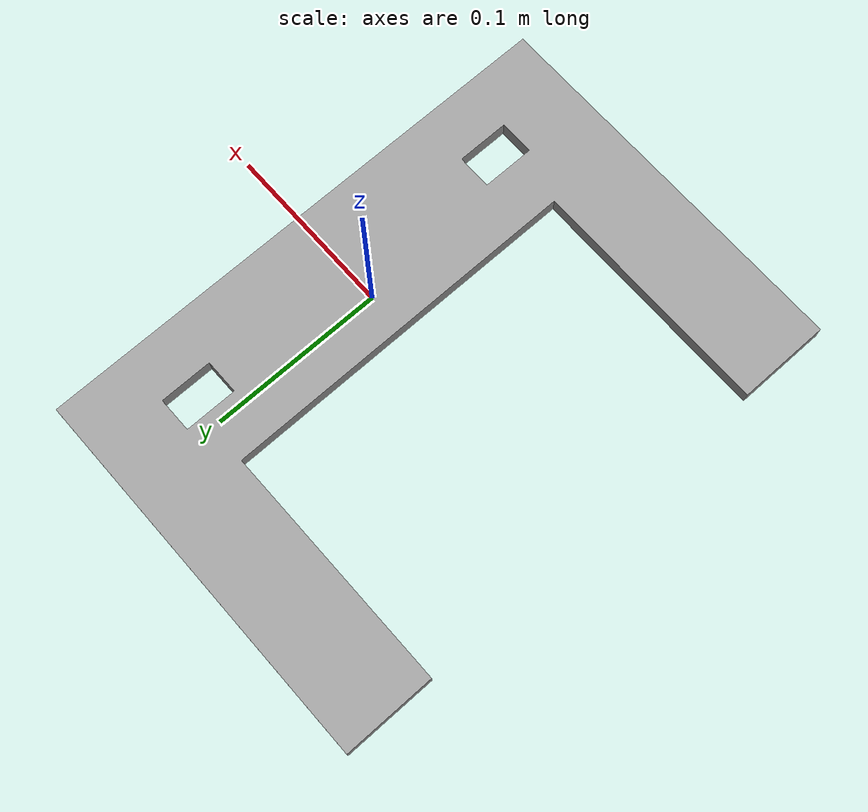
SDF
<?xml version="1.0"?>

<sdf version="1.5">
	<model name="plate_a">

		<static>false</static>

		<link name="link0">
			<collision name="collision">
				<pose> 0.0 0.0 0.0 0.0 0.0 0.0</pose>
				<geometry>
					<!-- OR -->
					<mesh>
						<uri>model://plate_a/meshes/plate_a_centroid.stl</uri>
					</mesh>
				</geometry>
				<surface>
					<friction>
						<ode>
							<mu>0.99</mu>
							<mu2>0.99</mu2>
						</ode>
					</friction>
				</surface>
			</collision>

			<visual name="visual">
				<geometry>
					<!-- OR -->
					<mesh>
						<uri>model://plate_a/meshes/plate_a_centroid.dae</uri>
					</mesh>
				</geometry>
				<!-- OPTIONAL -->
				<material>
					<script>
						<uri>file://media/materials/scripts/gazebo.material</uri>
						<name>PR2/Grey1</name>
					</script>
				</material>
			</visual>

			<inertial>
				<mass>0.1</mass>
				<inertia>
					<ixx>0.00082718</ixx>
					<ixy>0.0</ixy>
					<ixz>0.0</ixz>
					<iyy>0.00043403</iyy>
					<iyz>0.0</iyz>
					<izz>0.00125955</izz>
				</inertia>
			</inertial>

		</link>

	</model>
</sdf>
